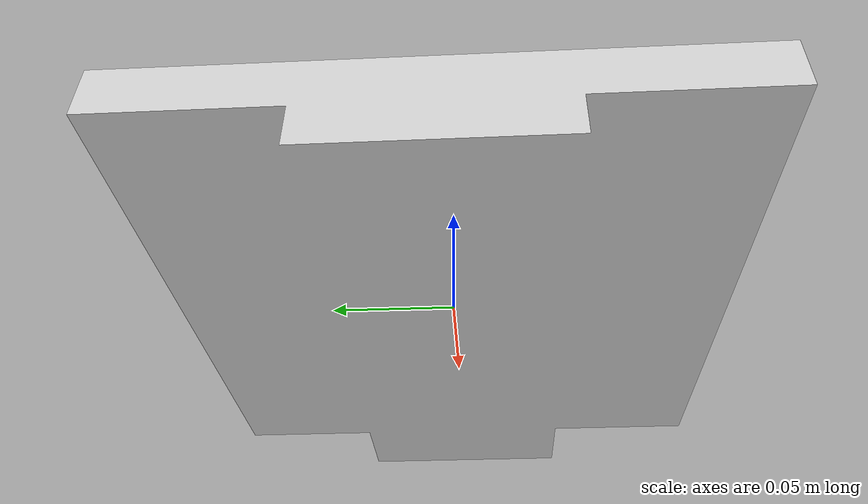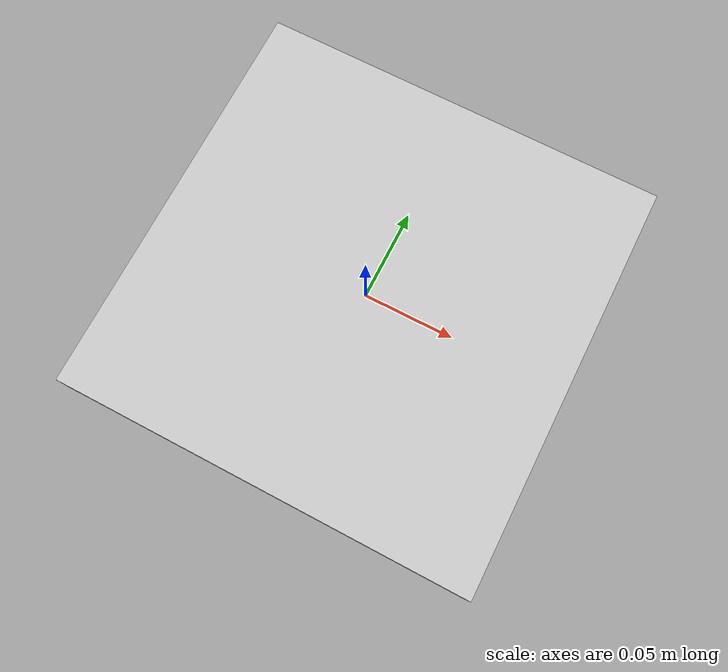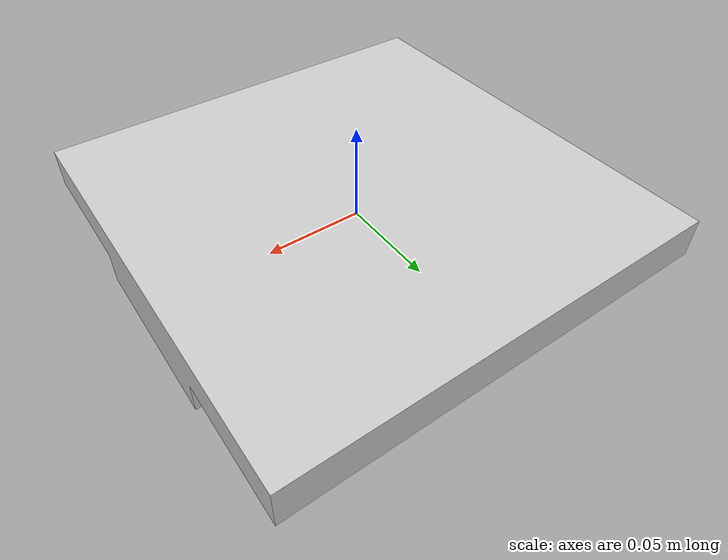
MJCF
<mujoco model="rail_des_live_carriage">
  <default>
    <default class="visual">
      <geom group="2" type="mesh" contype="0" conaffinity="0"/>
    </default>
    <default class="collision">
      <geom group="3" type="mesh"/>
    </default>
  </default>
  <asset>
    <material name="material_rail_des_live_carriage_0" specular="0.20000000000000004" shininess="1.0" rgba="0.80000000 0.80000000 0.80000000 1.0"/>
    <mesh file="rail_des_live_carriage.obj"/>
  </asset>
  <worldbody>
    <body name="rail_des_live_carriage">
      <geom material="material_rail_des_live_carriage_0" mesh="rail_des_live_carriage" class="visual"/>
      <geom mesh="rail_des_live_carriage" class="collision"/>
    </body>
  </worldbody>
</mujoco>
